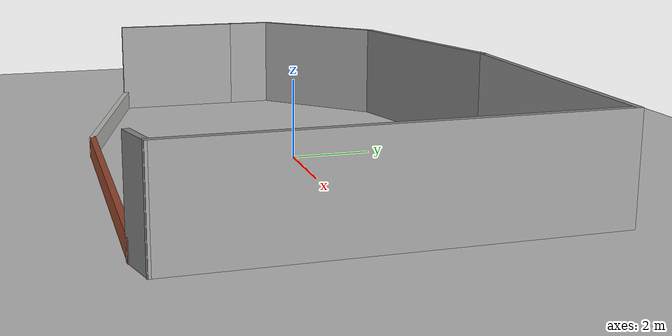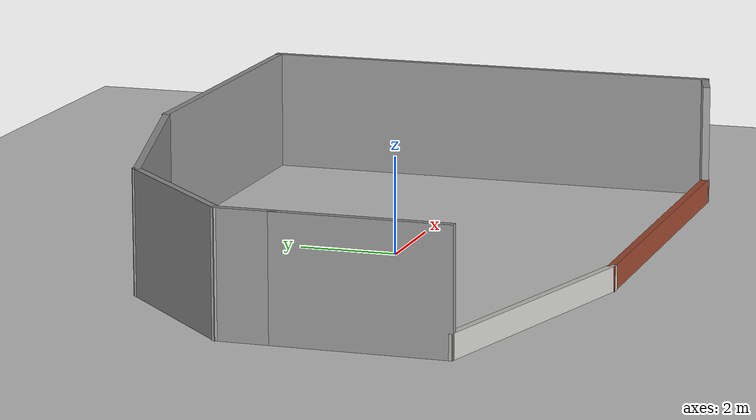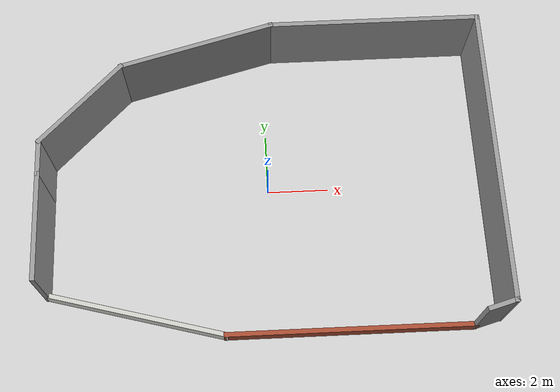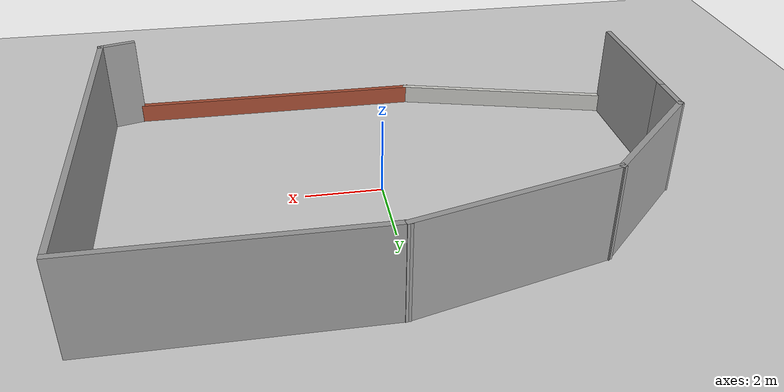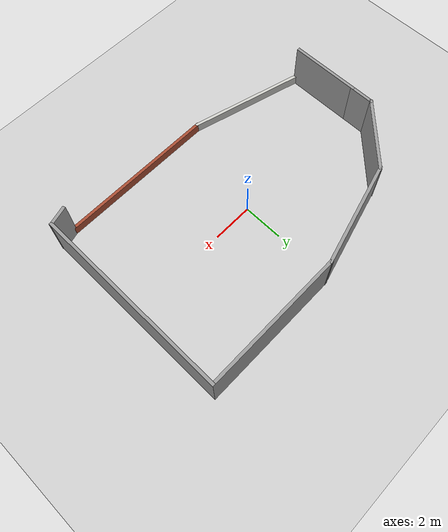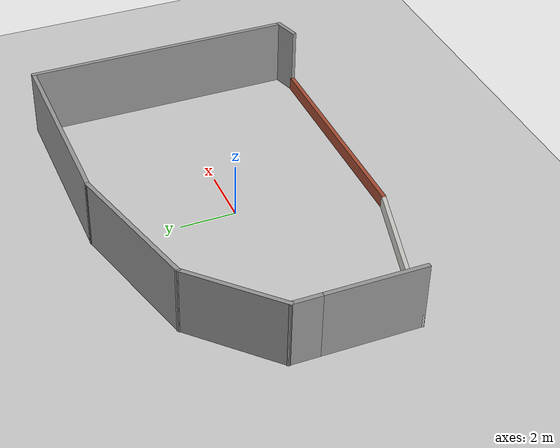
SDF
<sdf version="1.6">
 <world name="default">
  <light name="sun" type="directional">
   <pose>0 0 10 0 -0 0</pose>
   <diffuse>0.8 0.8 0.8 1</diffuse>
   <specular>0.2 0.2 0.2 1</specular>
   <attenuation>
    <range>1000</range>
    <constant>0.9</constant>
    <linear>0.01</linear>
    <quadratic>0.001</quadratic>
   </attenuation>
   <direction>-0.5 0.1 -0.9</direction>
  </light>
  <model name="ground_plane">
   <static>1</static>
   <link name="link">
    <collision name="collision">
     <geometry><plane><normal>0 0 1</normal><size>100 100</size></plane></geometry>
     <surface>
      <contact><collide_bitmask>65535</collide_bitmask></contact>
      <friction><ode><mu>100</mu><mu2>50</mu2></ode></friction>
     </surface>
    </collision>
    <visual name="visual">
     <cast_shadows>0</cast_shadows>
     <geometry><plane><normal>0 0 1</normal><size>100 100</size></plane></geometry>
     <material>
      <script><uri>file://media/materials/scripts/gazebo.material</uri><name>Gazebo/Grey</name></script>
     </material>
    </visual>
   </link>
  </model>
  <gravity>0 0 -9.8</gravity>
  <magnetic_field>6e-06 2.3e-05 -4.2e-05</magnetic_field>
  <atmosphere type="adiabatic"/>
  <physics name="default_physics" default="0" type="ode">
   <max_step_size>0.001</max_step_size>
   <real_time_factor>1</real_time_factor>
   <real_time_update_rate>1000</real_time_update_rate>
  </physics>
  <scene><ambient>0.4 0.4 0.4 1</ambient><background>0.7 0.7 0.7 1</background><shadows>1</shadows></scene>
  <audio><device>default</device></audio>
  <spherical_coordinates>
   <surface_model>EARTH_WGS84</surface_model>
   <latitude_deg>0</latitude_deg>
   <longitude_deg>0</longitude_deg>
   <elevation>0</elevation>
   <heading_deg>0</heading_deg>
  </spherical_coordinates>
  <model name="rmp03wall">
   <pose>-0.008494 0.066412 0 0 -0 0</pose>
   <link name="Wall_1">
    <collision name="Wall_1_Collision">
     <geometry><box><size>8 0.15 0.5</size></box></geometry>
     <pose>0 0 0.25 0 -0 0</pose>
    </collision>
    <visual name="Wall_1_Visual">
     <pose>0 0 0.25 0 -0 0</pose>
     <geometry><box><size>8 0.15 0.5</size></box></geometry>
     <material>
      <script><uri>file://media/materials/scripts/gazebo.material</uri><name>Gazebo/Bricks</name></script>
      <ambient>1 0.764706 0.305882 1</ambient>
     </material>
     <meta><layer>0</layer></meta>
    </visual>
    <pose>2.42123 -4.91467 0 0 -0 0</pose>
   </link>
   <link name="Wall_11">
    <collision name="Wall_11_Collision">
     <geometry><box><size>1.00265 0.15 2.5</size></box></geometry>
     <pose>0 0 1.25 0 -0 0</pose>
    </collision>
    <visual name="Wall_11_Visual">
     <pose>0 0 1.25 0 -0 0</pose>
     <geometry><box><size>1.00265 0.15 2.5</size></box></geometry>
     <material>
      <script><uri>file://media/materials/scripts/gazebo.material</uri><name>Gazebo/Grey</name></script>
      <ambient>1 1 1 1</ambient>
     </material>
     <meta><layer>0</layer></meta>
    </visual>
    <pose>6.75704 -4.79974 0 0 -0 0.272782</pose>
   </link>
   <link name="Wall_3">
    <collision name="Wall_3_Collision">
     <geometry><box><size>6 0.15 0.5</size></box></geometry>
     <pose>0 0 0.25 0 -0 0</pose>
    </collision>
    <visual name="Wall_3_Visual">
     <pose>0 0 0.25 0 -0 0</pose>
     <geometry><box><size>6 0.15 0.5</size></box></geometry>
     <material>
      <script><uri>file://media/materials/scripts/gazebo.material</uri><name>Gazebo/CeilingTiled</name></script>
      <ambient>0.760784 0.662745 0.627451 1</ambient>
     </material>
     <meta><layer>0</layer></meta>
    </visual>
    <pose>-4.32877 -4.15767 0 0 -0 2.87978</pose>
   </link>
   <link name="Wall_4">
    <collision name="Wall_4_Collision">
     <geometry><box><size>3.5 0.15 2.5</size></box></geometry>
     <pose>0 0 1.25 0 -0 0</pose>
    </collision>
    <visual name="Wall_4_Visual">
     <pose>0 0 1.25 0 -0 0</pose>
     <geometry><box><size>3.5 0.15 2.5</size></box></geometry>
     <material>
      <script><uri>file://media/materials/scripts/gazebo.material</uri><name>Gazebo/Grey</name></script>
      <ambient>1 1 1 1</ambient>
     </material>
     <meta><layer>0</layer></meta>
    </visual>
    <pose>-7.15387 -1.72553 0 0 -0 1.57086</pose>
   </link>
   <link name="Wall_5">
    <collision name="Wall_5_Collision">
     <geometry><box><size>1.25 0.15 2.5</size></box></geometry>
     <pose>0 0 1.25 0 -0 0</pose>
    </collision>
    <visual name="Wall_5_Visual">
     <pose>0 0 1.25 0 -0 0</pose>
     <geometry><box><size>1.25 0.15 2.5</size></box></geometry>
     <material>
      <script><uri>file://media/materials/scripts/gazebo.material</uri><name>Gazebo/Grey</name></script>
      <ambient>1 1 1 1</ambient>
     </material>
     <meta><layer>0</layer></meta>
    </visual>
    <pose>-7.15397 0.499618 0 0 -0 1.5708</pose>
   </link>
   <link name="Wall_6">
    <collision name="Wall_6_Collision">
     <geometry><box><size>3.75 0.15 2.5</size></box></geometry>
     <pose>0 0 1.25 0 -0 0</pose>
    </collision>
    <visual name="Wall_6_Visual">
     <pose>0 0 1.25 0 -0 0</pose>
     <geometry><box><size>3.75 0.15 2.5</size></box></geometry>
     <material>
      <script><uri>file://media/materials/scripts/gazebo.material</uri><name>Gazebo/Grey</name></script>
      <ambient>1 1 1 1</ambient>
     </material>
     <meta><layer>0</layer></meta>
    </visual>
    <pose>-5.88117 2.32241 0 0 -0 0.785398</pose>
   </link>
   <link name="Wall_7">
    <collision name="Wall_7_Collision">
     <geometry><box><size>5.25 0.15 2.5</size></box></geometry>
     <pose>0 0 1.25 0 -0 0</pose>
    </collision>
    <visual name="Wall_7_Visual">
     <pose>0 0 1.25 0 -0 0</pose>
     <geometry><box><size>5.25 0.15 2.5</size></box></geometry>
     <material>
      <script><uri>file://media/materials/scripts/gazebo.material</uri><name>Gazebo/Grey</name></script>
      <ambient>1 1 1 1</ambient>
     </material>
     <meta><layer>0</layer></meta>
    </visual>
    <pose>-2.14527 4.25519 0 0 -0 0.261799</pose>
   </link>
   <link name="Wall_8">
    <collision name="Wall_8_Collision">
     <geometry><box><size>7 0.15 2.5</size></box></geometry>
     <pose>0 0 1.25 0 -0 0</pose>
    </collision>
    <visual name="Wall_8_Visual">
     <pose>0 0 1.25 0 -0 0</pose>
     <geometry><box><size>7 0.15 2.5</size></box></geometry>
     <material>
      <script><uri>file://media/materials/scripts/gazebo.material</uri><name>Gazebo/Grey</name></script>
      <ambient>1 1 1 1</ambient>
     </material>
     <meta><layer>0</layer></meta>
    </visual>
    <pose>3.74284 4.91518 0 0 -0 0</pose>
   </link>
   <link name="Wall_9">
    <collision name="Wall_9_Collision">
     <geometry><box><size>9.75 0.15 2.5</size></box></geometry>
     <pose>0 0 1.25 0 -0 0</pose>
    </collision>
    <visual name="Wall_9_Visual">
     <pose>0 0 1.25 0 -0 0</pose>
     <geometry><box><size>9.75 0.15 2.5</size></box></geometry>
     <material>
      <script><uri>file://media/materials/scripts/gazebo.material</uri><name>Gazebo/Grey</name></script>
      <ambient>1 1 1 1</ambient>
     </material>
     <meta><layer>0</layer></meta>
    </visual>
    <pose>7.16784 0.115179 0 0 -0 -1.5708</pose>
   </link>
   <static>1</static>
  </model>
 </world>
</sdf>
